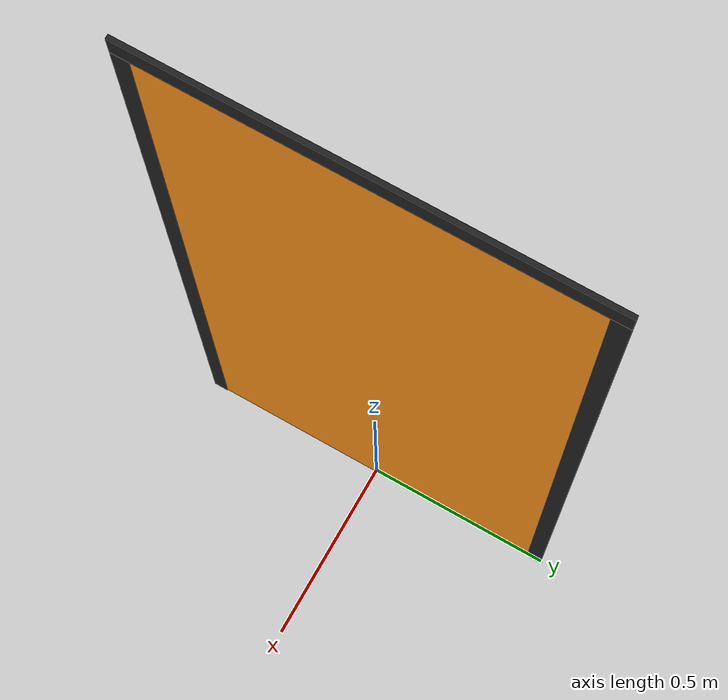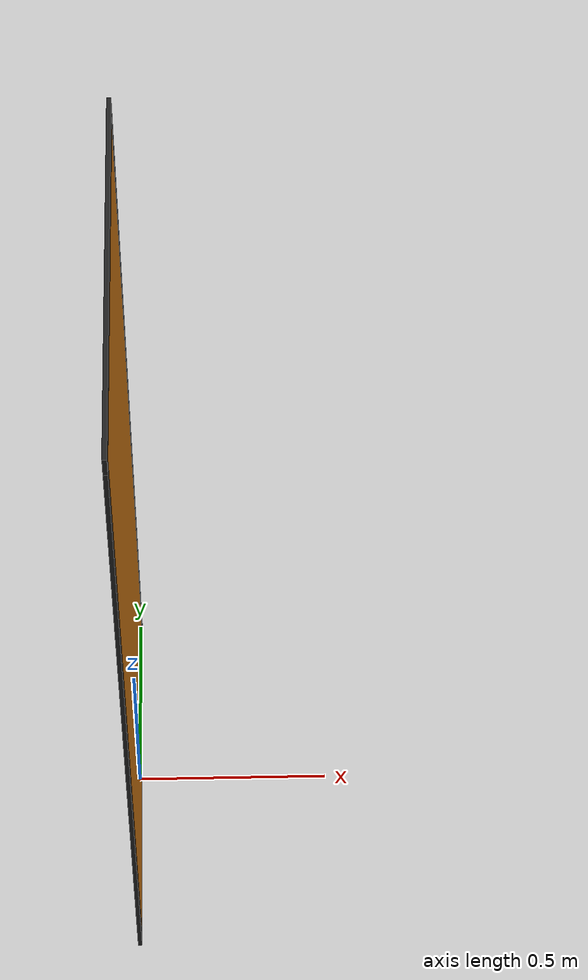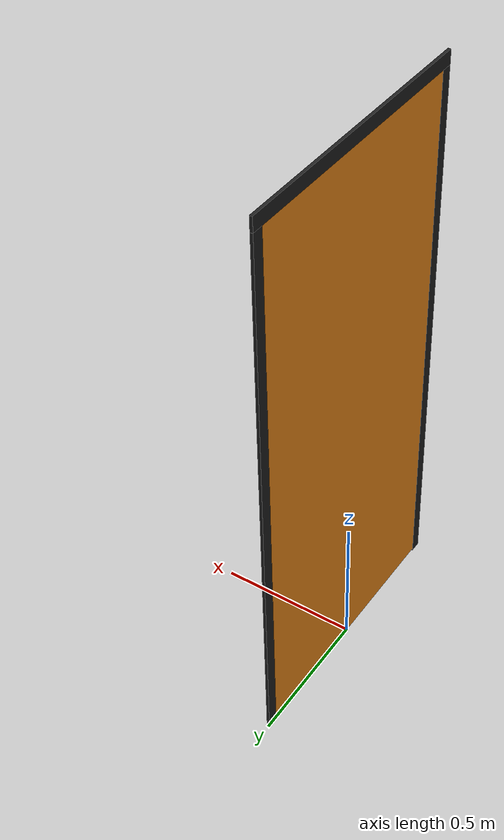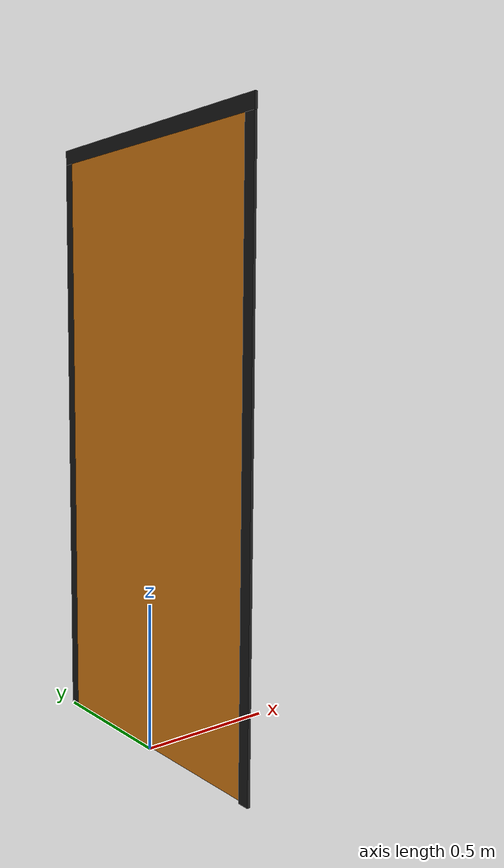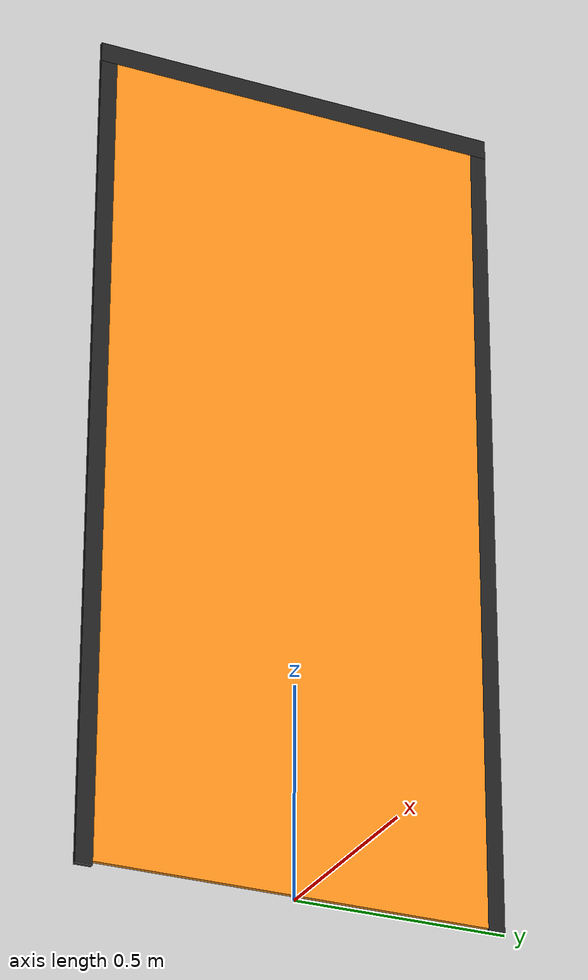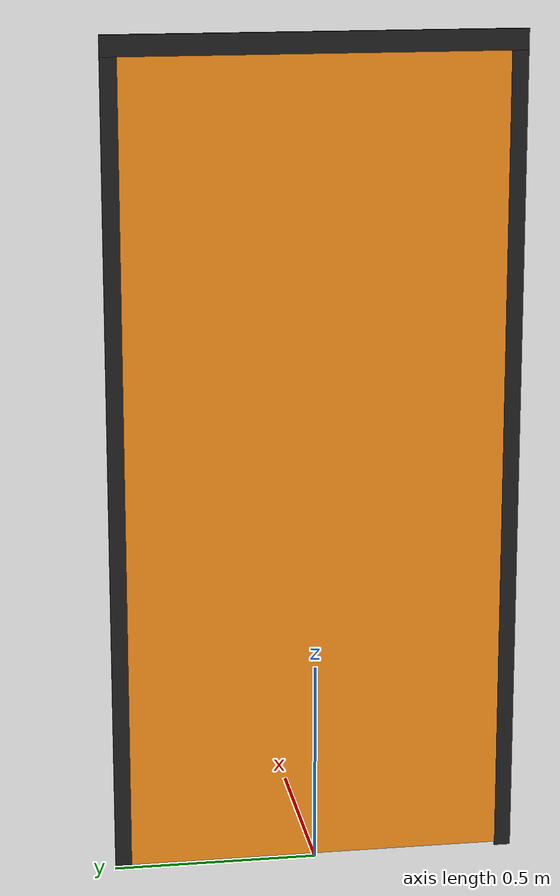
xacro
<?xml version="1.0"?>
<robot xmlns:xacro="http://www.ros.org/wiki/xacro" name="room_door">

  <xacro:arg name = "opening" default="left"/>
  <xacro:arg name = "width" default=".9"/>
  <xacro:property name = "hole_width" value = "$(arg width)"/>
  <xacro:property name = "hole_height" value = "2"/>
  <xacro:property name = "door_thickness" value = ".01"/>
  <xacro:property name = "upper_border_width" value = ".05"/>
  <xacro:property name = "side_border_width" value = ".04"/>
  <xacro:property name = "floor_crack" value = ".01"/>
  <xacro:property name = "full_pi" value = "3.14"/>

  <xacro:macro name = "default_inertia" params = "mass">
    <inertial>
      <mass value="${mass}" />
      <inertia  ixx="1.0" ixy="0.0"  ixz="0.0"  iyy="1.0"  iyz="0.0"  izz="1.0" />
    </inertial>
  </xacro:macro>

  <link name = "base_link"/>

  <joint name = "fixed" type = "fixed">
    <parent link = "base_link"/>
    <child link = "top_post"/>
    <origin xyz = "0 0 ${hole_height + upper_border_width / 2}"/>
  </joint>

  <link name="top_post">
    <xacro:default_inertia mass = "1"/>
    <visual>
      <origin xyz="0 0 0" rpy="0 0 0" />
      <geometry>
        <box size = "${door_thickness} ${hole_width + upper_border_width * 2} ${upper_border_width}" />
      </geometry>
    </visual>
    <collision>
      <origin xyz="0 0 0" rpy="0 0 0" />
      <geometry>
        <box size = "${door_thickness} ${hole_width + upper_border_width * 2} ${upper_border_width}" />
      </geometry>
    </collision>
  </link>

  <gazebo reference="top_post">
    <material>Gazebo/Black</material>
  </gazebo>

  <xacro:macro name = "post" params = "direction">
    <link name="${direction}_post">
      <xacro:default_inertia mass = "1000"/>
      <visual>
        <origin xyz="0 0 0" rpy="0 0 0" />
        <geometry>
          <box size = "${door_thickness} ${side_border_width} ${hole_height}" />
        </geometry>
      </visual>
      <collision>
        <origin xyz="0 0 0" rpy="0 0 0" />
        <geometry>
          <box size = "${door_thickness} ${side_border_width} ${hole_height}" />
        </geometry>
      </collision>
    </link>

    <gazebo reference="${direction}_post">
      <material>Gazebo/Black</material>
    </gazebo>

    <xacro:property name = "dir_multiplier" value = "${-1 if direction == 'left' else 1}"/>
    <joint name="${direction}_post_to_base" type="fixed">
      <parent link="top_post"/>
      <child link="${direction}_post"/>
      <origin xyz="0 ${ dir_multiplier * (hole_width / 2 + upper_border_width - side_border_width / 2)} ${- upper_border_width / 2 - hole_height / 2}"/>
    </joint>
  </xacro:macro>

  <xacro:post direction = "left"/>
  <xacro:post direction = "right"/>

  <xacro:macro name = "door" params = "opening_direction">
    <xacro:property name = "dir_multiplier" value = "${1 if opening_direction == 'left' else -1}"/>

    <link name="door_front">
      <xacro:default_inertia mass = "1"/>
      <visual>
        <origin xyz="${- door_thickness / 2} ${dir_multiplier * (hole_width / 2 + upper_border_width - side_border_width)} ${floor_crack / 2}" rpy="0 0 0" />
        <geometry>
          <box size = "${door_thickness} ${hole_width + 2 * (upper_border_width - side_border_width)} ${hole_height - floor_crack}" />
        </geometry>
      </visual>
      <collision>
        <origin xyz="${- door_thickness / 2} ${dir_multiplier * (hole_width / 2 + upper_border_width - side_border_width)} ${floor_crack / 2}" rpy="0 0 0" />
        <geometry>
          <box size = "${door_thickness} ${hole_width + 2 * (upper_border_width - side_border_width)} ${hole_height - floor_crack}" />
        </geometry>
      </collision>
    </link>

    <gazebo reference="door_front">
      <material>Gazebo/Orange</material>
    </gazebo>

    <joint name="door_front_to_${opening_direction}_post" type="revolute">
      <parent link="${opening_direction}_post"/>
      <child link="door_front"/>
      <origin xyz="${door_thickness / 2} ${dir_multiplier * side_border_width / 2} 0"/>
      <axis xyz="0 0 1"/>
      <limit effort="1000.0" lower="${- full_pi if opening_direction == 'left' else 0}" upper="${0 if opening_direction == 'left' else full_pi}" velocity="100"/>
      <dynamics damping=".5"/>
    </joint>
  </xacro:macro>

  <xacro:door opening_direction = "$(arg opening)"/>

</robot>
